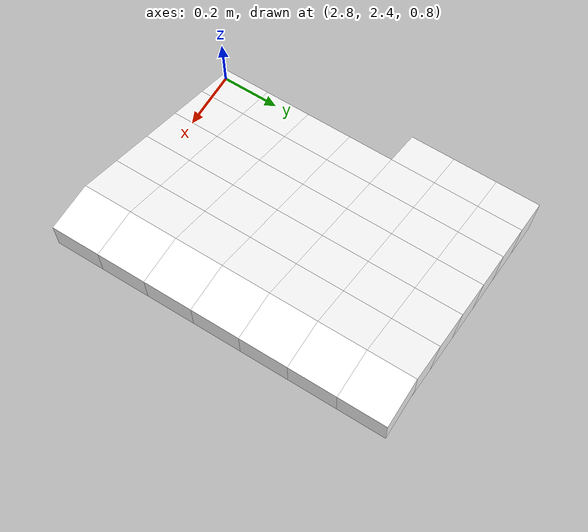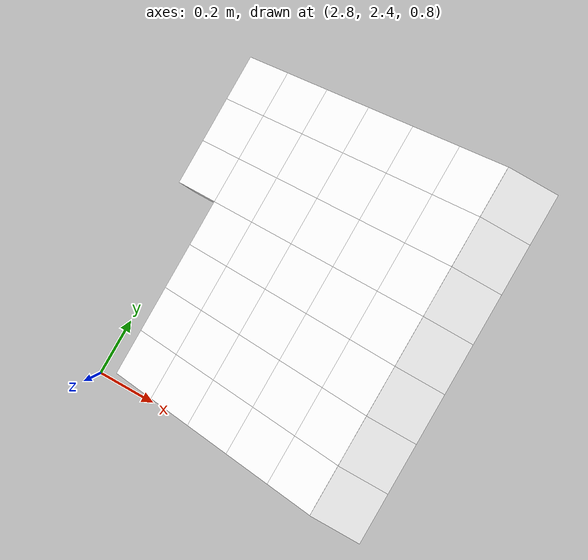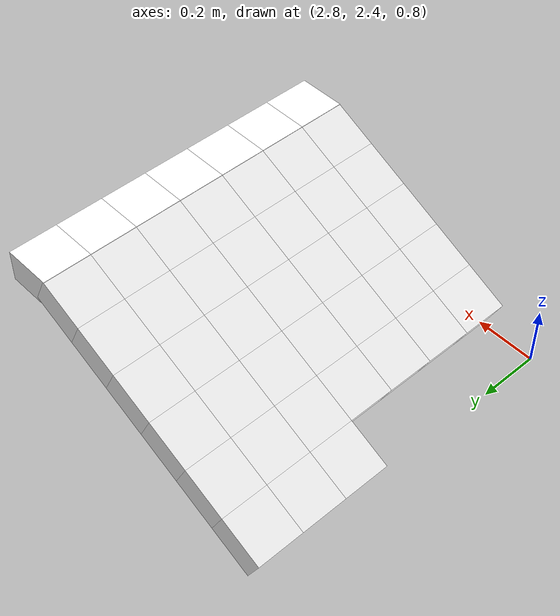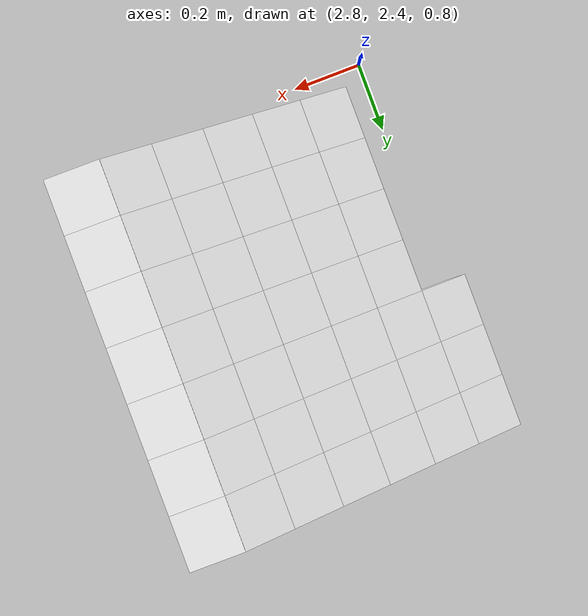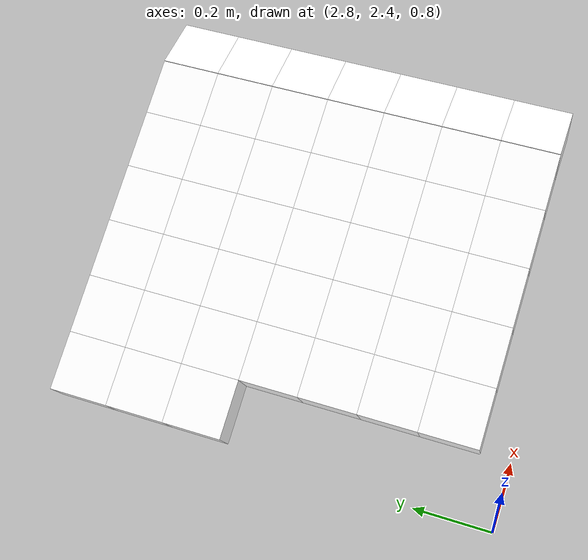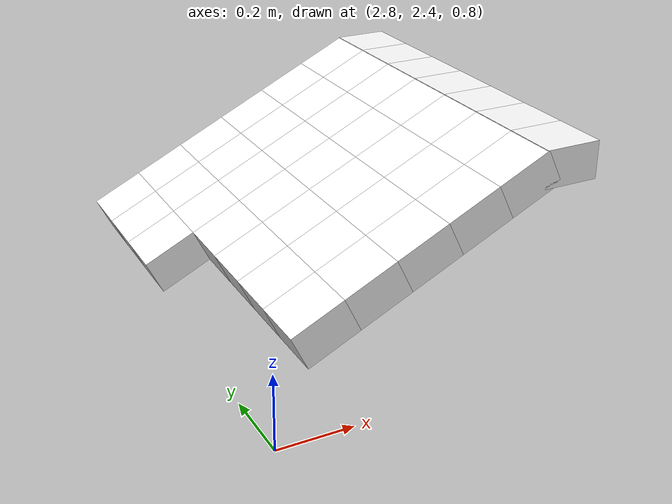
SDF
<sdf version="1.7">
 <world name="default">
  <include><uri>model://sun</uri></include>
  <model name="static_environment">
   <static>true</static>
   <link name="region_675">
    <pose>2.967153307946564 2.5499999999999994 1.011209308380573 0.0 -0.45 0.0</pose>
    <collision name="region_675_collision">
     <geometry><box><size>0.15 0.15 0.1</size></box></geometry>
     <surface><friction><ode><mu>1.0</mu><mu2>1.0</mu2></ode></friction></surface>
    </collision>
    <visual name="region_675_visual">
     <geometry><box><size>0.15 0.15 0.1</size></box></geometry>
     <material><ambient>1.0 1.0 1.0 1.0</ambient><diffuse>1.0 1.0 1.0 1.0</diffuse></material>
    </visual>
   </link>
   <link name="region_676">
    <pose>3.102220373299466 2.5499999999999994 1.0764541384972577 0.0 -0.45 0.0</pose>
    <collision name="region_676_collision">
     <geometry><box><size>0.15 0.15 0.1</size></box></geometry>
     <surface><friction><ode><mu>1.0</mu><mu2>1.0</mu2></ode></friction></surface>
    </collision>
    <visual name="region_676_visual">
     <geometry><box><size>0.15 0.15 0.1</size></box></geometry>
     <material><ambient>1.0 1.0 1.0 1.0</ambient><diffuse>1.0 1.0 1.0 1.0</diffuse></material>
    </visual>
   </link>
   <link name="region_677">
    <pose>3.237287438652367 2.5499999999999994 1.1416989686139423 0.0 -0.45 0.0</pose>
    <collision name="region_677_collision">
     <geometry><box><size>0.15 0.15 0.1</size></box></geometry>
     <surface><friction><ode><mu>1.0</mu><mu2>1.0</mu2></ode></friction></surface>
    </collision>
    <visual name="region_677_visual">
     <geometry><box><size>0.15 0.15 0.1</size></box></geometry>
     <material><ambient>1.0 1.0 1.0 1.0</ambient><diffuse>1.0 1.0 1.0 1.0</diffuse></material>
    </visual>
   </link>
   <link name="region_678">
    <pose>3.372354504005269 2.5499999999999994 1.2069437987306273 0.0 -0.45 0.0</pose>
    <collision name="region_678_collision">
     <geometry><box><size>0.15 0.15 0.1</size></box></geometry>
     <surface><friction><ode><mu>1.0</mu><mu2>1.0</mu2></ode></friction></surface>
    </collision>
    <visual name="region_678_visual">
     <geometry><box><size>0.15 0.15 0.1</size></box></geometry>
     <material><ambient>1.0 1.0 1.0 1.0</ambient><diffuse>1.0 1.0 1.0 1.0</diffuse></material>
    </visual>
   </link>
   <link name="region_679">
    <pose>3.507421569358171 2.5499999999999994 1.2721886288473119 0.0 -0.45 0.0</pose>
    <collision name="region_679_collision">
     <geometry><box><size>0.15 0.15 0.1</size></box></geometry>
     <surface><friction><ode><mu>1.0</mu><mu2>1.0</mu2></ode></friction></surface>
    </collision>
    <visual name="region_679_visual">
     <geometry><box><size>0.15 0.15 0.1</size></box></geometry>
     <material><ambient>1.0 1.0 1.0 1.0</ambient><diffuse>1.0 1.0 1.0 1.0</diffuse></material>
    </visual>
   </link>
   <link name="region_695">
    <pose>2.967153307946564 2.6999999999999997 1.011209308380573 0.0 -0.45 0.0</pose>
    <collision name="region_695_collision">
     <geometry><box><size>0.15 0.15 0.1</size></box></geometry>
     <surface><friction><ode><mu>1.0</mu><mu2>1.0</mu2></ode></friction></surface>
    </collision>
    <visual name="region_695_visual">
     <geometry><box><size>0.15 0.15 0.1</size></box></geometry>
     <material><ambient>1.0 1.0 1.0 1.0</ambient><diffuse>1.0 1.0 1.0 1.0</diffuse></material>
    </visual>
   </link>
   <link name="region_696">
    <pose>3.102220373299466 2.6999999999999997 1.0764541384972577 0.0 -0.45 0.0</pose>
    <collision name="region_696_collision">
     <geometry><box><size>0.15 0.15 0.1</size></box></geometry>
     <surface><friction><ode><mu>1.0</mu><mu2>1.0</mu2></ode></friction></surface>
    </collision>
    <visual name="region_696_visual">
     <geometry><box><size>0.15 0.15 0.1</size></box></geometry>
     <material><ambient>1.0 1.0 1.0 1.0</ambient><diffuse>1.0 1.0 1.0 1.0</diffuse></material>
    </visual>
   </link>
   <link name="region_697">
    <pose>3.237287438652367 2.6999999999999997 1.1416989686139423 0.0 -0.45 0.0</pose>
    <collision name="region_697_collision">
     <geometry><box><size>0.15 0.15 0.1</size></box></geometry>
     <surface><friction><ode><mu>1.0</mu><mu2>1.0</mu2></ode></friction></surface>
    </collision>
    <visual name="region_697_visual">
     <geometry><box><size>0.15 0.15 0.1</size></box></geometry>
     <material><ambient>1.0 1.0 1.0 1.0</ambient><diffuse>1.0 1.0 1.0 1.0</diffuse></material>
    </visual>
   </link>
   <link name="region_698">
    <pose>3.372354504005269 2.6999999999999997 1.2069437987306273 0.0 -0.45 0.0</pose>
    <collision name="region_698_collision">
     <geometry><box><size>0.15 0.15 0.1</size></box></geometry>
     <surface><friction><ode><mu>1.0</mu><mu2>1.0</mu2></ode></friction></surface>
    </collision>
    <visual name="region_698_visual">
     <geometry><box><size>0.15 0.15 0.1</size></box></geometry>
     <material><ambient>1.0 1.0 1.0 1.0</ambient><diffuse>1.0 1.0 1.0 1.0</diffuse></material>
    </visual>
   </link>
   <link name="region_699">
    <pose>3.507421569358171 2.6999999999999997 1.2721886288473119 0.0 -0.45 0.0</pose>
    <collision name="region_699_collision">
     <geometry><box><size>0.15 0.15 0.1</size></box></geometry>
     <surface><friction><ode><mu>1.0</mu><mu2>1.0</mu2></ode></friction></surface>
    </collision>
    <visual name="region_699_visual">
     <geometry><box><size>0.15 0.15 0.1</size></box></geometry>
     <material><ambient>1.0 1.0 1.0 1.0</ambient><diffuse>1.0 1.0 1.0 1.0</diffuse></material>
    </visual>
   </link>
   <link name="region_715">
    <pose>2.967153307946564 2.8499999999999996 1.011209308380573 0.0 -0.45 0.0</pose>
    <collision name="region_715_collision">
     <geometry><box><size>0.15 0.15 0.1</size></box></geometry>
     <surface><friction><ode><mu>1.0</mu><mu2>1.0</mu2></ode></friction></surface>
    </collision>
    <visual name="region_715_visual">
     <geometry><box><size>0.15 0.15 0.1</size></box></geometry>
     <material><ambient>1.0 1.0 1.0 1.0</ambient><diffuse>1.0 1.0 1.0 1.0</diffuse></material>
    </visual>
   </link>
   <link name="region_716">
    <pose>3.102220373299466 2.8499999999999996 1.0764541384972577 0.0 -0.45 0.0</pose>
    <collision name="region_716_collision">
     <geometry><box><size>0.15 0.15 0.1</size></box></geometry>
     <surface><friction><ode><mu>1.0</mu><mu2>1.0</mu2></ode></friction></surface>
    </collision>
    <visual name="region_716_visual">
     <geometry><box><size>0.15 0.15 0.1</size></box></geometry>
     <material><ambient>1.0 1.0 1.0 1.0</ambient><diffuse>1.0 1.0 1.0 1.0</diffuse></material>
    </visual>
   </link>
   <link name="region_717">
    <pose>3.237287438652367 2.8499999999999996 1.1416989686139423 0.0 -0.45 0.0</pose>
    <collision name="region_717_collision">
     <geometry><box><size>0.15 0.15 0.1</size></box></geometry>
     <surface><friction><ode><mu>1.0</mu><mu2>1.0</mu2></ode></friction></surface>
    </collision>
    <visual name="region_717_visual">
     <geometry><box><size>0.15 0.15 0.1</size></box></geometry>
     <material><ambient>1.0 1.0 1.0 1.0</ambient><diffuse>1.0 1.0 1.0 1.0</diffuse></material>
    </visual>
   </link>
   <link name="region_718">
    <pose>3.372354504005269 2.8499999999999996 1.2069437987306273 0.0 -0.45 0.0</pose>
    <collision name="region_718_collision">
     <geometry><box><size>0.15 0.15 0.1</size></box></geometry>
     <surface><friction><ode><mu>1.0</mu><mu2>1.0</mu2></ode></friction></surface>
    </collision>
    <visual name="region_718_visual">
     <geometry><box><size>0.15 0.15 0.1</size></box></geometry>
     <material><ambient>1.0 1.0 1.0 1.0</ambient><diffuse>1.0 1.0 1.0 1.0</diffuse></material>
    </visual>
   </link>
   <link name="region_719">
    <pose>3.507421569358171 2.8499999999999996 1.2721886288473119 0.0 -0.45 0.0</pose>
    <collision name="region_719_collision">
     <geometry><box><size>0.15 0.15 0.1</size></box></geometry>
     <surface><friction><ode><mu>1.0</mu><mu2>1.0</mu2></ode></friction></surface>
    </collision>
    <visual name="region_719_visual">
     <geometry><box><size>0.15 0.15 0.1</size></box></geometry>
     <material><ambient>1.0 1.0 1.0 1.0</ambient><diffuse>1.0 1.0 1.0 1.0</diffuse></material>
    </visual>
   </link>
   <link name="region_735">
    <pose>2.967153307946564 2.9999999999999996 1.011209308380573 0.0 -0.45 0.0</pose>
    <collision name="region_735_collision">
     <geometry><box><size>0.15 0.15 0.1</size></box></geometry>
     <surface><friction><ode><mu>1.0</mu><mu2>1.0</mu2></ode></friction></surface>
    </collision>
    <visual name="region_735_visual">
     <geometry><box><size>0.15 0.15 0.1</size></box></geometry>
     <material><ambient>1.0 1.0 1.0 1.0</ambient><diffuse>1.0 1.0 1.0 1.0</diffuse></material>
    </visual>
   </link>
   <link name="region_736">
    <pose>3.102220373299466 2.9999999999999996 1.0764541384972577 0.0 -0.45 0.0</pose>
    <collision name="region_736_collision">
     <geometry><box><size>0.15 0.15 0.1</size></box></geometry>
     <surface><friction><ode><mu>1.0</mu><mu2>1.0</mu2></ode></friction></surface>
    </collision>
    <visual name="region_736_visual">
     <geometry><box><size>0.15 0.15 0.1</size></box></geometry>
     <material><ambient>1.0 1.0 1.0 1.0</ambient><diffuse>1.0 1.0 1.0 1.0</diffuse></material>
    </visual>
   </link>
   <link name="region_737">
    <pose>3.237287438652367 2.9999999999999996 1.1416989686139423 0.0 -0.45 0.0</pose>
    <collision name="region_737_collision">
     <geometry><box><size>0.15 0.15 0.1</size></box></geometry>
     <surface><friction><ode><mu>1.0</mu><mu2>1.0</mu2></ode></friction></surface>
    </collision>
    <visual name="region_737_visual">
     <geometry><box><size>0.15 0.15 0.1</size></box></geometry>
     <material><ambient>1.0 1.0 1.0 1.0</ambient><diffuse>1.0 1.0 1.0 1.0</diffuse></material>
    </visual>
   </link>
   <link name="region_738">
    <pose>3.372354504005269 2.9999999999999996 1.2069437987306273 0.0 -0.45 0.0</pose>
    <collision name="region_738_collision">
     <geometry><box><size>0.15 0.15 0.1</size></box></geometry>
     <surface><friction><ode><mu>1.0</mu><mu2>1.0</mu2></ode></friction></surface>
    </collision>
    <visual name="region_738_visual">
     <geometry><box><size>0.15 0.15 0.1</size></box></geometry>
     <material><ambient>1.0 1.0 1.0 1.0</ambient><diffuse>1.0 1.0 1.0 1.0</diffuse></material>
    </visual>
   </link>
   <link name="region_739">
    <pose>3.507421569358171 2.9999999999999996 1.2721886288473119 0.0 -0.45 0.0</pose>
    <collision name="region_739_collision">
     <geometry><box><size>0.15 0.15 0.1</size></box></geometry>
     <surface><friction><ode><mu>1.0</mu><mu2>1.0</mu2></ode></friction></surface>
    </collision>
    <visual name="region_739_visual">
     <geometry><box><size>0.15 0.15 0.1</size></box></geometry>
     <material><ambient>1.0 1.0 1.0 1.0</ambient><diffuse>1.0 1.0 1.0 1.0</diffuse></material>
    </visual>
   </link>
   <link name="region_754">
    <pose>2.832086242593662 3.1499999999999995 0.9459644782638886 0.0 -0.45 0.0</pose>
    <collision name="region_754_collision">
     <geometry><box><size>0.15 0.15 0.1</size></box></geometry>
     <surface><friction><ode><mu>1.0</mu><mu2>1.0</mu2></ode></friction></surface>
    </collision>
    <visual name="region_754_visual">
     <geometry><box><size>0.15 0.15 0.1</size></box></geometry>
     <material><ambient>1.0 1.0 1.0 1.0</ambient><diffuse>1.0 1.0 1.0 1.0</diffuse></material>
    </visual>
   </link>
   <link name="region_755">
    <pose>2.967153307946564 3.1499999999999995 1.011209308380573 0.0 -0.45 0.0</pose>
    <collision name="region_755_collision">
     <geometry><box><size>0.15 0.15 0.1</size></box></geometry>
     <surface><friction><ode><mu>1.0</mu><mu2>1.0</mu2></ode></friction></surface>
    </collision>
    <visual name="region_755_visual">
     <geometry><box><size>0.15 0.15 0.1</size></box></geometry>
     <material><ambient>1.0 1.0 1.0 1.0</ambient><diffuse>1.0 1.0 1.0 1.0</diffuse></material>
    </visual>
   </link>
   <link name="region_756">
    <pose>3.102220373299466 3.1499999999999995 1.0764541384972577 0.0 -0.45 0.0</pose>
    <collision name="region_756_collision">
     <geometry><box><size>0.15 0.15 0.1</size></box></geometry>
     <surface><friction><ode><mu>1.0</mu><mu2>1.0</mu2></ode></friction></surface>
    </collision>
    <visual name="region_756_visual">
     <geometry><box><size>0.15 0.15 0.1</size></box></geometry>
     <material><ambient>1.0 1.0 1.0 1.0</ambient><diffuse>1.0 1.0 1.0 1.0</diffuse></material>
    </visual>
   </link>
   <link name="region_757">
    <pose>3.237287438652367 3.1499999999999995 1.1416989686139423 0.0 -0.45 0.0</pose>
    <collision name="region_757_collision">
     <geometry><box><size>0.15 0.15 0.1</size></box></geometry>
     <surface><friction><ode><mu>1.0</mu><mu2>1.0</mu2></ode></friction></surface>
    </collision>
    <visual name="region_757_visual">
     <geometry><box><size>0.15 0.15 0.1</size></box></geometry>
     <material><ambient>1.0 1.0 1.0 1.0</ambient><diffuse>1.0 1.0 1.0 1.0</diffuse></material>
    </visual>
   </link>
   <link name="region_758">
    <pose>3.372354504005269 3.1499999999999995 1.2069437987306273 0.0 -0.45 0.0</pose>
    <collision name="region_758_collision">
     <geometry><box><size>0.15 0.15 0.1</size></box></geometry>
     <surface><friction><ode><mu>1.0</mu><mu2>1.0</mu2></ode></friction></surface>
    </collision>
    <visual name="region_758_visual">
     <geometry><box><size>0.15 0.15 0.1</size></box></geometry>
     <material><ambient>1.0 1.0 1.0 1.0</ambient><diffuse>1.0 1.0 1.0 1.0</diffuse></material>
    </visual>
   </link>
   <link name="region_759">
    <pose>3.507421569358171 3.1499999999999995 1.2721886288473119 0.0 -0.45 0.0</pose>
    <collision name="region_759_collision">
     <geometry><box><size>0.15 0.15 0.1</size></box></geometry>
     <surface><friction><ode><mu>1.0</mu><mu2>1.0</mu2></ode></friction></surface>
    </collision>
    <visual name="region_759_visual">
     <geometry><box><size>0.15 0.15 0.1</size></box></geometry>
     <material><ambient>1.0 1.0 1.0 1.0</ambient><diffuse>1.0 1.0 1.0 1.0</diffuse></material>
    </visual>
   </link>
   <link name="region_774">
    <pose>2.832086242593662 3.2999999999999994 0.9459644782638886 0.0 -0.45 0.0</pose>
    <collision name="region_774_collision">
     <geometry><box><size>0.15 0.15 0.1</size></box></geometry>
     <surface><friction><ode><mu>1.0</mu><mu2>1.0</mu2></ode></friction></surface>
    </collision>
    <visual name="region_774_visual">
     <geometry><box><size>0.15 0.15 0.1</size></box></geometry>
     <material><ambient>1.0 1.0 1.0 1.0</ambient><diffuse>1.0 1.0 1.0 1.0</diffuse></material>
    </visual>
   </link>
   <link name="region_775">
    <pose>2.967153307946564 3.2999999999999994 1.011209308380573 0.0 -0.45 0.0</pose>
    <collision name="region_775_collision">
     <geometry><box><size>0.15 0.15 0.1</size></box></geometry>
     <surface><friction><ode><mu>1.0</mu><mu2>1.0</mu2></ode></friction></surface>
    </collision>
    <visual name="region_775_visual">
     <geometry><box><size>0.15 0.15 0.1</size></box></geometry>
     <material><ambient>1.0 1.0 1.0 1.0</ambient><diffuse>1.0 1.0 1.0 1.0</diffuse></material>
    </visual>
   </link>
   <link name="region_776">
    <pose>3.102220373299466 3.2999999999999994 1.0764541384972577 0.0 -0.45 0.0</pose>
    <collision name="region_776_collision">
     <geometry><box><size>0.15 0.15 0.1</size></box></geometry>
     <surface><friction><ode><mu>1.0</mu><mu2>1.0</mu2></ode></friction></surface>
    </collision>
    <visual name="region_776_visual">
     <geometry><box><size>0.15 0.15 0.1</size></box></geometry>
     <material><ambient>1.0 1.0 1.0 1.0</ambient><diffuse>1.0 1.0 1.0 1.0</diffuse></material>
    </visual>
   </link>
   <link name="region_777">
    <pose>3.237287438652367 3.2999999999999994 1.1416989686139423 0.0 -0.45 0.0</pose>
    <collision name="region_777_collision">
     <geometry><box><size>0.15 0.15 0.1</size></box></geometry>
     <surface><friction><ode><mu>1.0</mu><mu2>1.0</mu2></ode></friction></surface>
    </collision>
    <visual name="region_777_visual">
     <geometry><box><size>0.15 0.15 0.1</size></box></geometry>
     <material><ambient>1.0 1.0 1.0 1.0</ambient><diffuse>1.0 1.0 1.0 1.0</diffuse></material>
    </visual>
   </link>
   <link name="region_778">
    <pose>3.372354504005269 3.2999999999999994 1.2069437987306273 0.0 -0.45 0.0</pose>
    <collision name="region_778_collision">
     <geometry><box><size>0.15 0.15 0.1</size></box></geometry>
     <surface><friction><ode><mu>1.0</mu><mu2>1.0</mu2></ode></friction></surface>
    </collision>
    <visual name="region_778_visual">
     <geometry><box><size>0.15 0.15 0.1</size></box></geometry>
     <material><ambient>1.0 1.0 1.0 1.0</ambient><diffuse>1.0 1.0 1.0 1.0</diffuse></material>
    </visual>
   </link>
   <link name="region_779">
    <pose>3.507421569358171 3.2999999999999994 1.2721886288473119 0.0 -0.45 0.0</pose>
    <collision name="region_779_collision">
     <geometry><box><size>0.15 0.15 0.1</size></box></geometry>
     <surface><friction><ode><mu>1.0</mu><mu2>1.0</mu2></ode></friction></surface>
    </collision>
    <visual name="region_779_visual">
     <geometry><box><size>0.15 0.15 0.1</size></box></geometry>
     <material><ambient>1.0 1.0 1.0 1.0</ambient><diffuse>1.0 1.0 1.0 1.0</diffuse></material>
    </visual>
   </link>
   <link name="region_794">
    <pose>2.832086242593662 3.4499999999999993 0.9459644782638886 0.0 -0.45 0.0</pose>
    <collision name="region_794_collision">
     <geometry><box><size>0.15 0.15 0.1</size></box></geometry>
     <surface><friction><ode><mu>1.0</mu><mu2>1.0</mu2></ode></friction></surface>
    </collision>
    <visual name="region_794_visual">
     <geometry><box><size>0.15 0.15 0.1</size></box></geometry>
     <material><ambient>1.0 1.0 1.0 1.0</ambient><diffuse>1.0 1.0 1.0 1.0</diffuse></material>
    </visual>
   </link>
   <link name="region_795">
    <pose>2.967153307946564 3.4499999999999993 1.011209308380573 0.0 -0.45 0.0</pose>
    <collision name="region_795_collision">
     <geometry><box><size>0.15 0.15 0.1</size></box></geometry>
     <surface><friction><ode><mu>1.0</mu><mu2>1.0</mu2></ode></friction></surface>
    </collision>
    <visual name="region_795_visual">
     <geometry><box><size>0.15 0.15 0.1</size></box></geometry>
     <material><ambient>1.0 1.0 1.0 1.0</ambient><diffuse>1.0 1.0 1.0 1.0</diffuse></material>
    </visual>
   </link>
   <link name="region_796">
    <pose>3.102220373299466 3.4499999999999993 1.0764541384972577 0.0 -0.45 0.0</pose>
    <collision name="region_796_collision">
     <geometry><box><size>0.15 0.15 0.1</size></box></geometry>
     <surface><friction><ode><mu>1.0</mu><mu2>1.0</mu2></ode></friction></surface>
    </collision>
    <visual name="region_796_visual">
     <geometry><box><size>0.15 0.15 0.1</size></box></geometry>
     <material><ambient>1.0 1.0 1.0 1.0</ambient><diffuse>1.0 1.0 1.0 1.0</diffuse></material>
    </visual>
   </link>
   <link name="region_797">
    <pose>3.237287438652367 3.4499999999999993 1.1416989686139423 0.0 -0.45 0.0</pose>
    <collision name="region_797_collision">
     <geometry><box><size>0.15 0.15 0.1</size></box></geometry>
     <surface><friction><ode><mu>1.0</mu><mu2>1.0</mu2></ode></friction></surface>
    </collision>
    <visual name="region_797_visual">
     <geometry><box><size>0.15 0.15 0.1</size></box></geometry>
     <material><ambient>1.0 1.0 1.0 1.0</ambient><diffuse>1.0 1.0 1.0 1.0</diffuse></material>
    </visual>
   </link>
   <link name="region_798">
    <pose>3.372354504005269 3.4499999999999993 1.2069437987306273 0.0 -0.45 0.0</pose>
    <collision name="region_798_collision">
     <geometry><box><size>0.15 0.15 0.1</size></box></geometry>
     <surface><friction><ode><mu>1.0</mu><mu2>1.0</mu2></ode></friction></surface>
    </collision>
    <visual name="region_798_visual">
     <geometry><box><size>0.15 0.15 0.1</size></box></geometry>
     <material><ambient>1.0 1.0 1.0 1.0</ambient><diffuse>1.0 1.0 1.0 1.0</diffuse></material>
    </visual>
   </link>
   <link name="region_799">
    <pose>3.507421569358171 3.4499999999999993 1.2721886288473119 0.0 -0.45 0.0</pose>
    <collision name="region_799_collision">
     <geometry><box><size>0.15 0.15 0.1</size></box></geometry>
     <surface><friction><ode><mu>1.0</mu><mu2>1.0</mu2></ode></friction></surface>
    </collision>
    <visual name="region_799_visual">
     <geometry><box><size>0.15 0.15 0.1</size></box></geometry>
     <material><ambient>1.0 1.0 1.0 1.0</ambient><diffuse>1.0 1.0 1.0 1.0</diffuse></material>
    </visual>
   </link>
   <link name="region_1060">
    <pose>3.625 2.5499999999999994 1.3 0.0 0.0 0.0</pose>
    <collision name="region_1060_collision">
     <geometry><box><size>0.15 0.15 0.1</size></box></geometry>
     <surface><friction><ode><mu>1.0</mu><mu2>1.0</mu2></ode></friction></surface>
    </collision>
    <visual name="region_1060_visual">
     <geometry><box><size>0.15 0.15 0.1</size></box></geometry>
     <material><ambient>1.0 1.0 1.0 1.0</ambient><diffuse>1.0 1.0 1.0 1.0</diffuse></material>
    </visual>
   </link>
   <link name="region_1080">
    <pose>3.625 2.6999999999999997 1.3 0.0 0.0 0.0</pose>
    <collision name="region_1080_collision">
     <geometry><box><size>0.15 0.15 0.1</size></box></geometry>
     <surface><friction><ode><mu>1.0</mu><mu2>1.0</mu2></ode></friction></surface>
    </collision>
    <visual name="region_1080_visual">
     <geometry><box><size>0.15 0.15 0.1</size></box></geometry>
     <material><ambient>1.0 1.0 1.0 1.0</ambient><diffuse>1.0 1.0 1.0 1.0</diffuse></material>
    </visual>
   </link>
   <link name="region_1100">
    <pose>3.625 2.8499999999999996 1.3 0.0 0.0 0.0</pose>
    <collision name="region_1100_collision">
     <geometry><box><size>0.15 0.15 0.1</size></box></geometry>
     <surface><friction><ode><mu>1.0</mu><mu2>1.0</mu2></ode></friction></surface>
    </collision>
    <visual name="region_1100_visual">
     <geometry><box><size>0.15 0.15 0.1</size></box></geometry>
     <material><ambient>1.0 1.0 1.0 1.0</ambient><diffuse>1.0 1.0 1.0 1.0</diffuse></material>
    </visual>
   </link>
   <link name="region_1120">
    <pose>3.625 2.9999999999999996 1.3 0.0 0.0 0.0</pose>
    <collision name="region_1120_collision">
     <geometry><box><size>0.15 0.15 0.1</size></box></geometry>
     <surface><friction><ode><mu>1.0</mu><mu2>1.0</mu2></ode></friction></surface>
    </collision>
    <visual name="region_1120_visual">
     <geometry><box><size>0.15 0.15 0.1</size></box></geometry>
     <material><ambient>1.0 1.0 1.0 1.0</ambient><diffuse>1.0 1.0 1.0 1.0</diffuse></material>
    </visual>
   </link>
   <link name="region_1140">
    <pose>3.625 3.1499999999999995 1.3 0.0 0.0 0.0</pose>
    <collision name="region_1140_collision">
     <geometry><box><size>0.15 0.15 0.1</size></box></geometry>
     <surface><friction><ode><mu>1.0</mu><mu2>1.0</mu2></ode></friction></surface>
    </collision>
    <visual name="region_1140_visual">
     <geometry><box><size>0.15 0.15 0.1</size></box></geometry>
     <material><ambient>1.0 1.0 1.0 1.0</ambient><diffuse>1.0 1.0 1.0 1.0</diffuse></material>
    </visual>
   </link>
   <link name="region_1160">
    <pose>3.625 3.2999999999999994 1.3 0.0 0.0 0.0</pose>
    <collision name="region_1160_collision">
     <geometry><box><size>0.15 0.15 0.1</size></box></geometry>
     <surface><friction><ode><mu>1.0</mu><mu2>1.0</mu2></ode></friction></surface>
    </collision>
    <visual name="region_1160_visual">
     <geometry><box><size>0.15 0.15 0.1</size></box></geometry>
     <material><ambient>1.0 1.0 1.0 1.0</ambient><diffuse>1.0 1.0 1.0 1.0</diffuse></material>
    </visual>
   </link>
   <link name="region_1180">
    <pose>3.625 3.4499999999999993 1.3 0.0 0.0 0.0</pose>
    <collision name="region_1180_collision">
     <geometry><box><size>0.15 0.15 0.1</size></box></geometry>
     <surface><friction><ode><mu>1.0</mu><mu2>1.0</mu2></ode></friction></surface>
    </collision>
    <visual name="region_1180_visual">
     <geometry><box><size>0.15 0.15 0.1</size></box></geometry>
     <material><ambient>1.0 1.0 1.0 1.0</ambient><diffuse>1.0 1.0 1.0 1.0</diffuse></material>
    </visual>
   </link>
  </model>
 </world>
</sdf>
